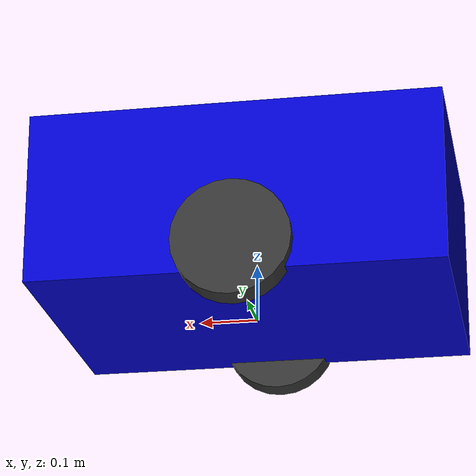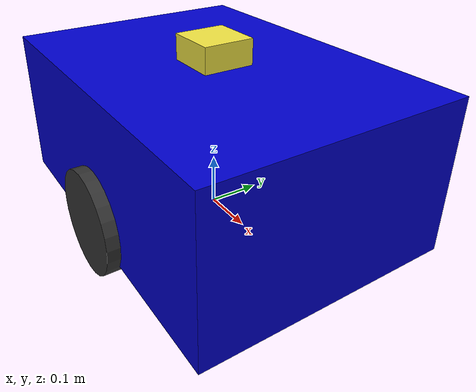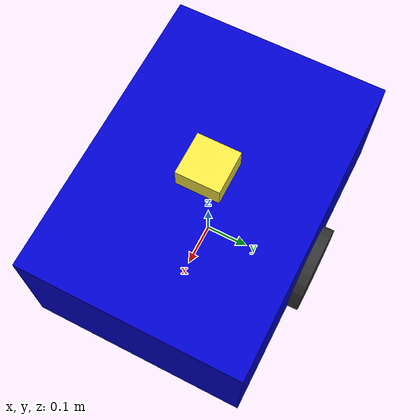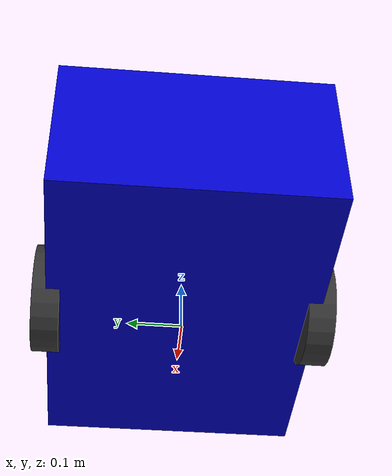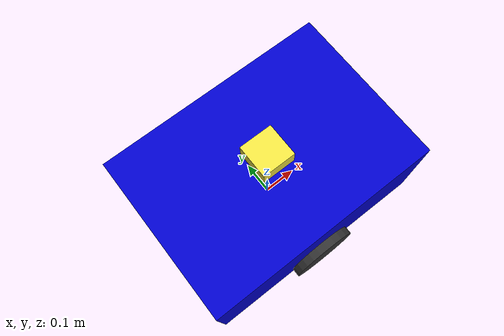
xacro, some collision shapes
<?xml version="1.0"?>
<robot xmlns:xacro="http://www.ros.org/wiki/xacro" name="robot">
  <xacro:include filename="$(find lama_test)/urdf/robot.gazebo" />

  <xacro:macro name="link_wheel" params="prefix reflect">
    <link name="${prefix}_wheel">
      <visual>
        <geometry>
          <cylinder length="0.050" radius="0.1" />
        </geometry>
        <material name="grey">
          <color rgba="0.2 0.2 .2 1"/>
        </material>
        <origin xyz="0 0 0" rpy="0 0 ${reflect * 1.5708}" />
      </visual>
      <inertial>
        <mass value="0.5" />
        <inertia  ixx="0.01" ixy="0.0" ixz="0.0" iyy="0.2" iyz="0.0" izz="0.01" />
      </inertial>
    </link>
  </xacro:macro>

  <xacro:macro name="joint_base_to_wheel" params="prefix reflect">
    <joint name="base_to_${prefix}_wheel" type="continuous">
      <parent link="base_link" />
      <child link="${prefix}_wheel" />
      <origin xyz="0 ${reflect * 0.25} 0.050" rpy="${reflect * 1.5708} 0 0" />
      <axis xyz="0 0 1" />
      <limit effort="100" velocity="1" />
    </joint>
  </xacro:macro>

  <xacro:macro name="trans_wheel" params="prefix">
    <transmission name="${prefix}_wheel_trans">
      <type>transmission_interface/SimpleTransmission</type>
      <actuator name="${prefix}_wheel_motor">
        <hardwareInterface>EffortJointInterface</hardwareInterface>
      </actuator>
      <joint name="base_to_${prefix}_wheel" />
    </transmission>
  </xacro:macro>

  <!-- Links -->
  <link name="base_link">
    <visual>
      <geometry>
        <box size="0.7 0.5 0.3" />
      </geometry>
      <material name="blue">
        <color rgba="0 0 .8 1"/>
      </material>
      <origin xyz="0 0 0.150" />
    </visual>
    <inertial>
      <mass value="30" />
      <inertia  ixx="0.5" ixy="0.0" ixz="0.0" iyy="0.5" iyz="0.0" izz="1.0" />
    </inertial>
    <collision>
      <geometry>
        <box size="0.7 0.5 0.3" />
      </geometry>
      <origin xyz="0 0 0.150" />
    </collision>
  </link>

  <xacro:link_wheel prefix="right" reflect="1" />
  <xacro:link_wheel prefix="left" reflect="-1" />

  <link name="hokuyo_link">
    <collision>
      <origin xyz="0 0 0" rpy="0 0 0"/>
      <geometry>
        <box size="0.1 0.1 0.1"/>
      </geometry>
    </collision>
    <visual>
      <origin xyz="0 0 0" rpy="0 0 0"/>
      <geometry>
        <mesh filename="package://rrbot_description/meshes/hokuyo.dae"/>
      </geometry>
    </visual>
    <inertial>
      <mass value="1e-5" />
      <origin xyz="0 0 0" rpy="0 0 0"/>
      <inertia ixx="1e-6" ixy="0" ixz="0" iyy="1e-6" iyz="0" izz="1e-6" />
    </inertial>
  </link>

  <!-- Joints -->
  <xacro:joint_base_to_wheel prefix="right" reflect="1" />
  <xacro:joint_base_to_wheel prefix="left" reflect="-1" />

  <joint name="hokuyo_joint" type="fixed">
    <axis xyz="0 1 0" />
    <origin xyz="0 0 0.3" rpy="0 0 0"/>
    <parent link="base_link"/>
    <child link="hokuyo_link"/>
  </joint>

  <!-- Transmissions -->
  <xacro:trans_wheel prefix="right" />
  <xacro:trans_wheel prefix="left" />
</robot>
